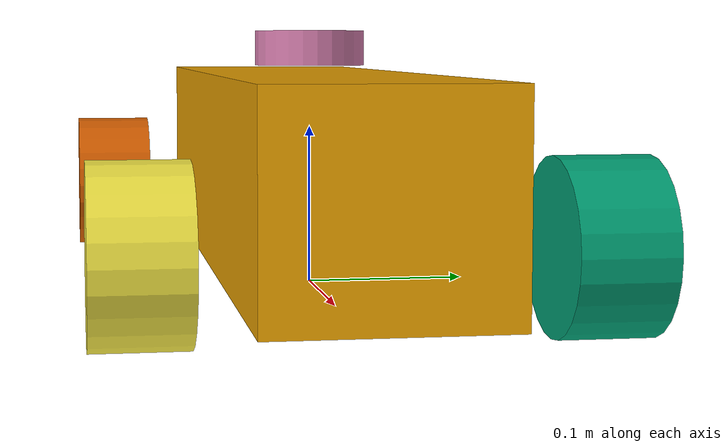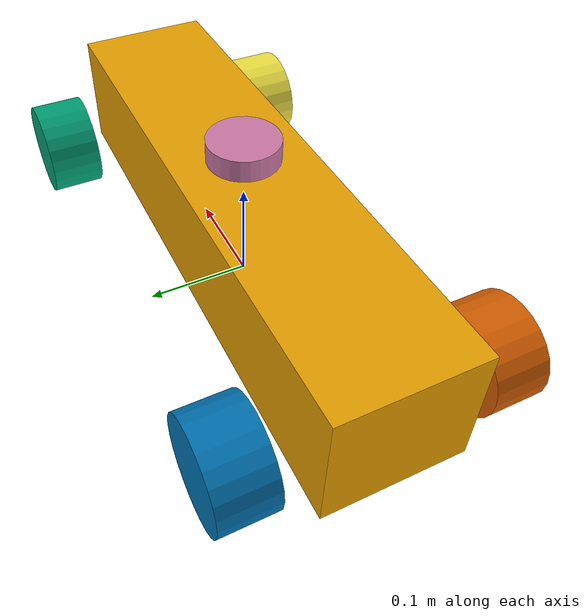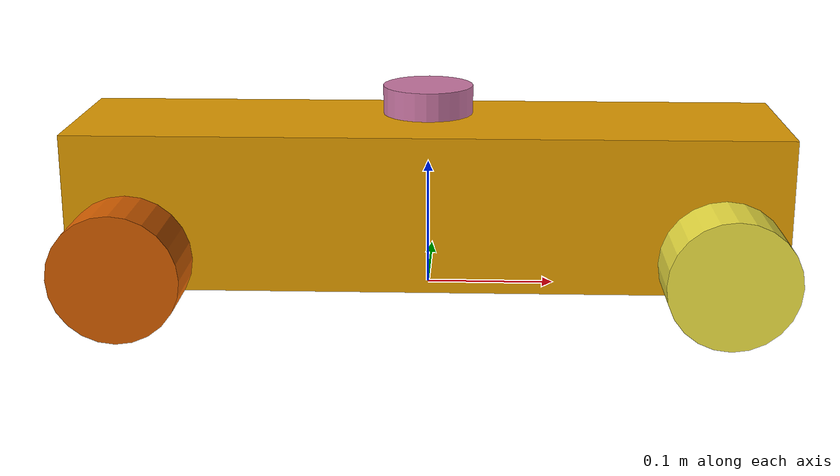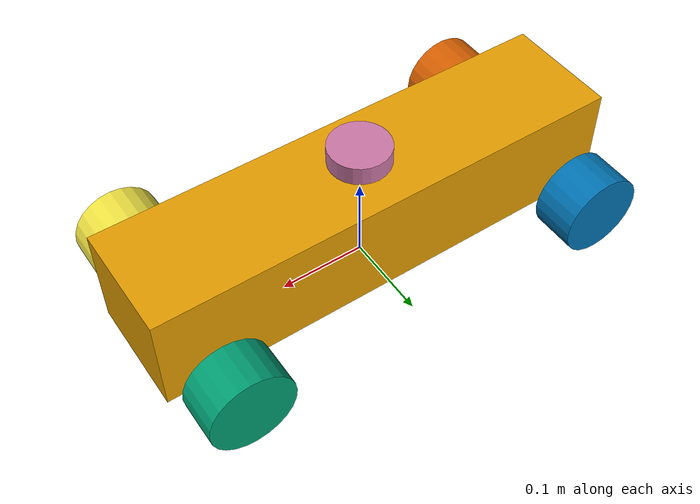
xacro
<?xml version="1.0"?>
<robot name="mecanum_bot" xmlns:xacro="http://www.ros.org/wiki/xacro" xmlns:gz="http://gazebosim.org/schema">

  <!-- BASE LINK -->
  <!-- box size = length(x, front-to-back) width(y) height(z) -->
  <!-- length (x) = 0.55 -->
  <!-- width (y) = 0.133  (from "front length" measurement) -->
  <!-- height (z) = 0.121 -->
  <link name="base_link">
    <visual>
      <geometry>
        <box size="0.55 0.133 0.121"/>
      </geometry>
      <origin xyz="0 0 0" rpy="0 0 0"/>
    </visual>
    <collision>
      <geometry>
        <box size="0.55 0.133 0.121"/>
      </geometry>
      <origin xyz="0 0 0" rpy="0 0 0"/>
    </collision>
    <!-- Inertial needed for Gazebo physics (box 0.55x0.133x0.121, m=2.0kg).
         Ignored by robot_state_publisher on real hardware. -->
    <inertial>
      <origin xyz="0 0 0" rpy="0 0 0"/>
      <mass value="2.0"/>
      <inertia ixx="0.0054" ixy="0.0" ixz="0.0"
               iyy="0.0529" iyz="0.0" izz="0.0534"/>
    </inertial>
  </link>

  <!-- BASE FOOTPRINT -->
  <!-- nav2_params.yaml uses base_footprint for AMCL and base_link for costmaps, -->
  <!-- so both frames must exist. Ground clearance = wheel z_offset (-0.026) -->
  <!-- - wheel radius (0.048) = base_link sits 0.074 above the ground plane. -->
  <link name="base_footprint"/>

  <joint name="base_footprint_joint" type="fixed">
    <parent link="base_footprint"/>
    <child link="base_link"/>
    <origin xyz="0 0 0.074" rpy="0 0 0"/>
  </joint>

  <!-- WHEEL MACRO -->
  <!-- Mecanum wheels are still "continuous" joints here -->
  <!-- the diagonal-roller behavior is handled in software (kinematics), not URDF -->
  <xacro:macro name="wheel" params="prefix x_offset y_offset">
    <link name="${prefix}_wheel_link">
      <visual>
        <geometry>
          <cylinder radius="0.048" length="0.05227"/>
        </geometry>
        <origin xyz="0 0 0" rpy="1.5708 0 0"/>
      </visual>
      <collision>
        <geometry>
          <cylinder radius="0.048" length="0.05227"/>
        </geometry>
        <origin xyz="0 0 0" rpy="1.5708 0 0"/>
      </collision>
      <!-- cylinder r=0.048 h=0.05227, m=0.3kg -->
      <inertial>
        <origin xyz="0 0 0" rpy="0 0 0"/>
        <mass value="0.3"/>
        <inertia ixx="0.000241" ixy="0.0" ixz="0.0"
                 iyy="0.000241" iyz="0.0" izz="0.000346"/>
      </inertial>
    </link>

    <joint name="${prefix}_wheel_joint" type="continuous">
      <parent link="base_link"/>
      <child link="${prefix}_wheel_link"/>
      <origin xyz="${x_offset} ${y_offset} -0.026" rpy="0 0 0"/>
      <axis xyz="0 1 0"/>
      <!-- effort/velocity limits required so Gazebo can actuate the joint -->
      <limit effort="10.0" velocity="30.0"/>
      <dynamics damping="0.1" friction="0.1"/>
    </joint>
  </xacro:macro>

  <!-- instantiate all 4 wheels -->
  <!-- x_offset: +-0.220 = half of 440mm wheelbase (wheel-center to wheel-center, front-rear) -->
  <!-- y_offset: +-0.1196 = half box width (0.0665) + gap box-to-wheel (0.027) + half wheel width (0.026135) -->
  <xacro:wheel prefix="front_left"  x_offset="0.220"  y_offset="0.1196"/>
  <xacro:wheel prefix="front_right" x_offset="0.220"  y_offset="-0.1196"/>
  <xacro:wheel prefix="rear_left"   x_offset="-0.220" y_offset="0.1196"/>
  <xacro:wheel prefix="rear_right"  x_offset="-0.220" y_offset="-0.1196"/>

  <!-- LIDAR -->
  <!-- This fixed transform is what fixes the -->
  <!-- "Frame [laser] does not exist" error permanently -->
  <!-- once robot_state_publisher is running -->
  <link name="laser_link">
    <visual>
      <geometry>
        <cylinder radius="0.035" length="0.022"/>
      </geometry>
    </visual>
    <collision>
      <geometry>
        <cylinder radius="0.035" length="0.022"/>
      </geometry>
    </collision>
    <!-- RPLidar A1 ~0.19kg -->
    <inertial>
      <origin xyz="0 0 0" rpy="0 0 0"/>
      <mass value="0.19"/>
      <inertia ixx="0.00007" ixy="0.0" ixz="0.0"
               iyy="0.00007" iyz="0.0" izz="0.00012"/>
    </inertial>
  </link>

  <!-- lidar centered on box top surface (x,y = box center) -->
  <!-- z = box top face (0.0605) + 5mm mount base + half of lidar body height (22mm/2 = 11mm) -->
  <!-- so the lidar body cylinder is drawn sitting on top of its base, not buried in the box -->
  <joint name="laser_joint" type="fixed">
    <parent link="base_link"/>
    <child link="laser_link"/>
    <origin xyz="0.0 0.0 0.0765" rpy="0 0 0"/>
  </joint>

  <!-- GAZEBO SIMULATION -->
  <!-- Everything below is only used in Gazebo Sim (gz). robot_state_publisher -->

  <!-- Mecanum wheel friction model: diagonal roller directions let the -->
  <!-- robot strafe (same pattern as gz_ros2_control_demos mecanum demo) -->
  <gazebo reference="front_left_wheel_link">
    <collision>
      <surface>
        <friction>
          <ode>
            <mu>1.0</mu>
            <mu2>0.0</mu2>
            <fdir1 gz:expressed_in="base_link">1 -1 0</fdir1>
          </ode>
        </friction>
      </surface>
    </collision>
  </gazebo>
  <gazebo reference="front_right_wheel_link">
    <collision>
      <surface>
        <friction>
          <ode>
            <mu>1.0</mu>
            <mu2>0.0</mu2>
            <fdir1 gz:expressed_in="base_link">1 1 0</fdir1>
          </ode>
        </friction>
      </surface>
    </collision>
  </gazebo>
  <gazebo reference="rear_left_wheel_link">
    <collision>
      <surface>
        <friction>
          <ode>
            <mu>1.0</mu>
            <mu2>0.0</mu2>
            <fdir1 gz:expressed_in="base_link">1 1 0</fdir1>
          </ode>
        </friction>
      </surface>
    </collision>
  </gazebo>
  <gazebo reference="rear_right_wheel_link">
    <collision>
      <surface>
        <friction>
          <ode>
            <mu>1.0</mu>
            <mu2>0.0</mu2>
            <fdir1 gz:expressed_in="base_link">1 -1 0</fdir1>
          </ode>
        </friction>
      </surface>
    </collision>
  </gazebo>

  <gazebo reference="laser_link">
    <sensor name="lidar" type="gpu_lidar">
      <always_on>true</always_on>
      <visualize>false</visualize>
      <!-- RPLidar A1 spins at ~5.5Hz; keeps software-rendering load down too -->
      <update_rate>5.5</update_rate>
      <topic>/scan</topic>
      <gz_frame_id>laser_link</gz_frame_id>
      <ray>
        <scan>
          <horizontal>
            <samples>360</samples>
            <resolution>1.0</resolution>
            <min_angle>-3.14159</min_angle>
            <max_angle>3.14159</max_angle>
          </horizontal>
        </scan>
        <range>
          <min>0.15</min>
          <max>12.0</max>
          <resolution>0.01</resolution>
        </range>
        <noise>
          <type>gaussian</type>
          <mean>0.0</mean>
          <stddev>0.01</stddev>
        </noise>
      </ray>
    </sensor>
  </gazebo>

  <!-- ros2_control hardware interface for Gazebo (velocity-controlled wheels) -->
  <ros2_control name="GazeboSimSystem" type="system">
    <hardware>
      <plugin>gz_ros2_control/GazeboSimSystem</plugin>
    </hardware>
    <joint name="front_left_wheel_joint">
      <command_interface name="velocity">
        <param name="min">-30</param>
        <param name="max">30</param>
      </command_interface>
      <state_interface name="position"/>
      <state_interface name="velocity"/>
    </joint>
    <joint name="front_right_wheel_joint">
      <command_interface name="velocity">
        <param name="min">-30</param>
        <param name="max">30</param>
      </command_interface>
      <state_interface name="position"/>
      <state_interface name="velocity"/>
    </joint>
    <joint name="rear_left_wheel_joint">
      <command_interface name="velocity">
        <param name="min">-30</param>
        <param name="max">30</param>
      </command_interface>
      <state_interface name="position"/>
      <state_interface name="velocity"/>
    </joint>
    <joint name="rear_right_wheel_joint">
      <command_interface name="velocity">
        <param name="min">-30</param>
        <param name="max">30</param>
      </command_interface>
      <state_interface name="position"/>
      <state_interface name="velocity"/>
    </joint>
  </ros2_control>

  <gazebo>
    <plugin filename="gz_ros2_control-system" name="gz_ros2_control::GazeboSimROS2ControlPlugin">
      <parameters>$(find my_robot_nav)/config/controllers.yaml</parameters>
      <ros>
        <remapping>/mecanum_drive_controller/reference:=/cmd_vel_stamped</remapping>
        <remapping>/mecanum_drive_controller/odometry:=/odom</remapping>
        <remapping>/mecanum_drive_controller/tf_odometry:=/tf</remapping>
      </ros>
    </plugin>
  </gazebo>

</robot>
